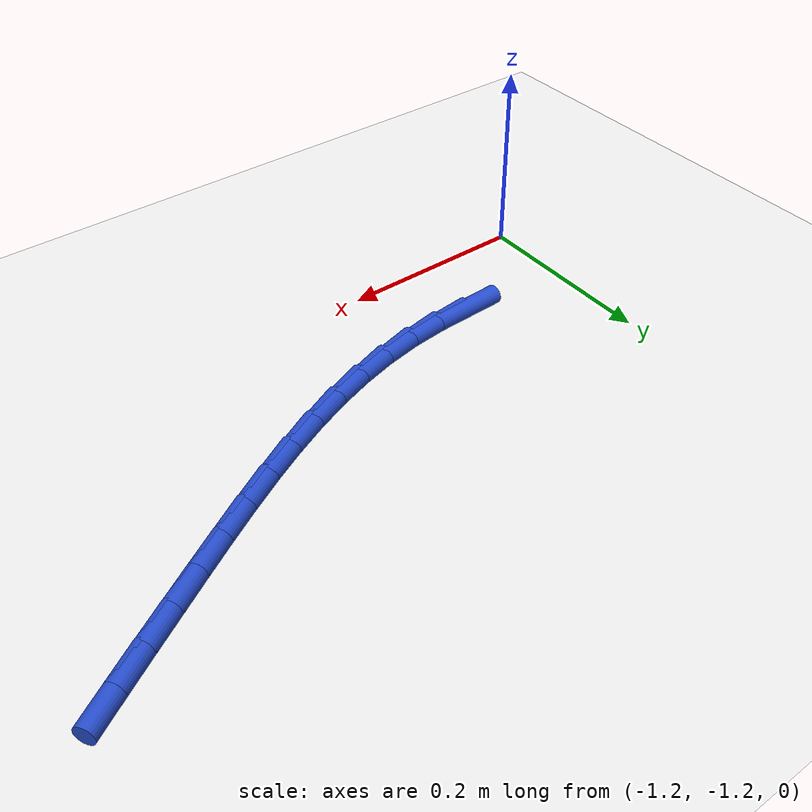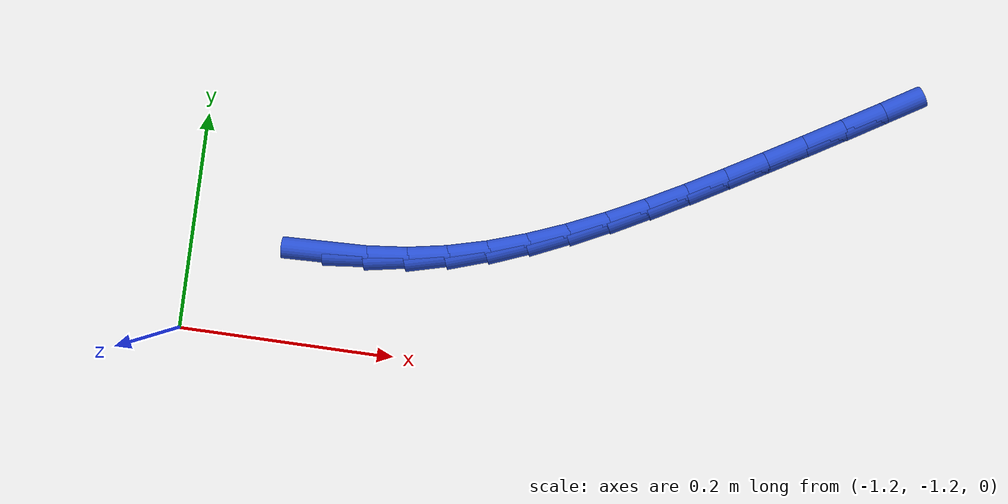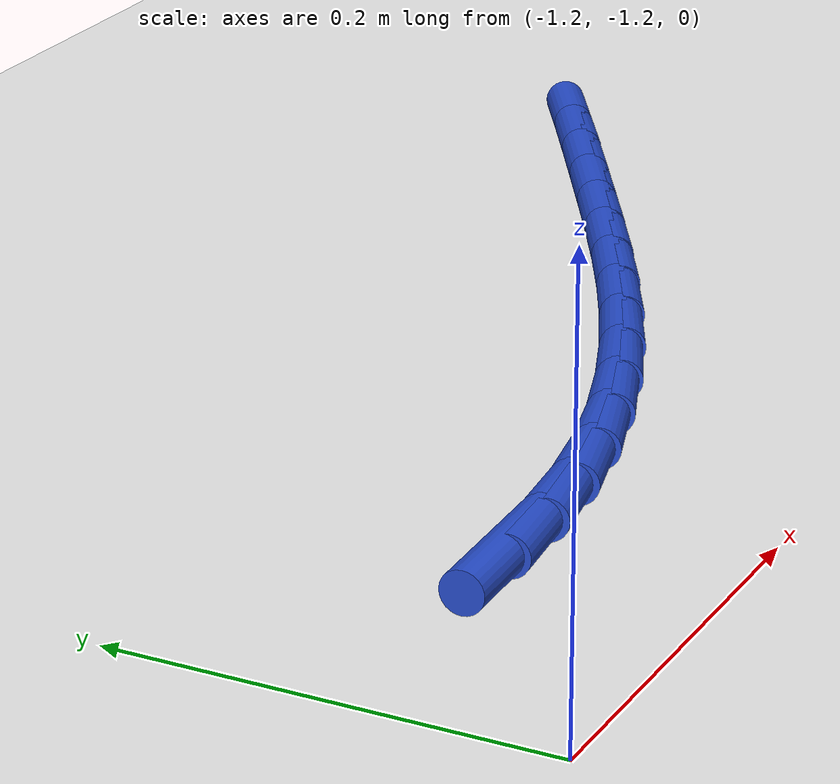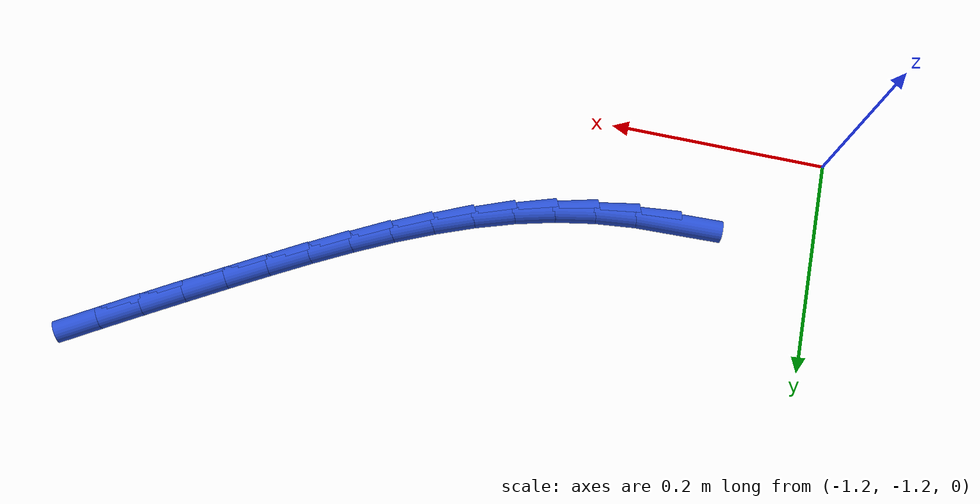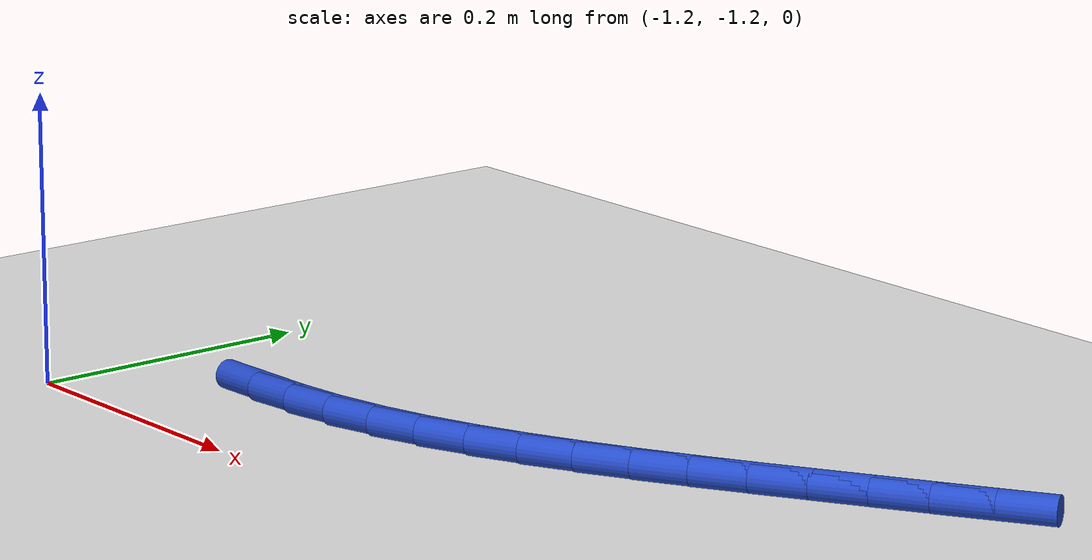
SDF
<sdf version="1.6">
 <world name="default">
  <model name="ground_plane">
   <static>1</static>
   <link name="link">
    <collision name="collision">
     <geometry><plane><normal>0 0 1</normal><size>100 100</size></plane></geometry>
     <surface><friction><ode><mu>100</mu><mu2>50</mu2></ode></friction></surface>
    </collision>
    <visual name="visual">
     <cast_shadows>0</cast_shadows>
     <geometry><plane><normal>0 0 1</normal><size>100 100</size></plane></geometry>
     <material>
      <script><uri>file://media/materials/scripts/gazebo.material</uri><name>Gazebo/WhiteGlow</name></script>
     </material>
    </visual>
   </link>
  </model>
  <model name="line">
   <link name="link_136">
    <pose>-1.0739378145190952 -1.1115067721940133 0.01 0 1.57 0.031399197259586904</pose>
    <collision name="collision">
     <geometry><cylinder><radius>0.01</radius><length>0.08</length></cylinder></geometry>
    </collision>
    <visual name="visual">
     <material>
      <script><name>Gazebo/Blue</name><uri>file://media/materials/scripts/gazebo.material</uri></script>
     </material>
     <geometry><cylinder><radius>0.01</radius><length>0.08</length></cylinder></geometry>
    </visual>
   </link>
   <link name="link_137">
    <pose>-1.0361590024038632 -1.110320157829714 0.01 0 1.57 0.10360883088432471</pose>
    <collision name="collision">
     <geometry><cylinder><radius>0.01</radius><length>0.08</length></cylinder></geometry>
    </collision>
    <visual name="visual">
     <material>
      <script><name>Gazebo/Blue</name><uri>file://media/materials/scripts/gazebo.material</uri></script>
     </material>
     <geometry><cylinder><radius>0.01</radius><length>0.08</length></cylinder></geometry>
    </visual>
   </link>
   <link name="link_138">
    <pose>-0.9988271810324548 -1.1064383513865088 0.01 0 1.57 0.18116275057583744</pose>
    <collision name="collision">
     <geometry><cylinder><radius>0.01</radius><length>0.08</length></cylinder></geometry>
    </collision>
    <visual name="visual">
     <material>
      <script><name>Gazebo/Blue</name><uri>file://media/materials/scripts/gazebo.material</uri></script>
     </material>
     <geometry><cylinder><radius>0.01</radius><length>0.08</length></cylinder></geometry>
    </visual>
   </link>
   <link name="link_139">
    <pose>-0.962082582621546 -1.099707805212259 0.01 0 1.57 0.25564000509784146</pose>
    <collision name="collision">
     <geometry><cylinder><radius>0.01</radius><length>0.08</length></cylinder></geometry>
    </collision>
    <visual name="visual">
     <material>
      <script><name>Gazebo/Blue</name><uri>file://media/materials/scripts/gazebo.material</uri></script>
     </material>
     <geometry><cylinder><radius>0.01</radius><length>0.08</length></cylinder></geometry>
    </visual>
   </link>
   <link name="link_140">
    <pose>-0.925940844676987 -1.0902618591294997 0.01 0 1.57 0.32127735436407745</pose>
    <collision name="collision">
     <geometry><cylinder><radius>0.01</radius><length>0.08</length></cylinder></geometry>
    </collision>
    <visual name="visual">
     <material>
      <script><name>Gazebo/Blue</name><uri>file://media/materials/scripts/gazebo.material</uri></script>
     </material>
     <geometry><cylinder><radius>0.01</radius><length>0.08</length></cylinder></geometry>
    </visual>
   </link>
   <link name="link_141">
    <pose>-0.8903395889704588 -1.0784134892937443 0.01 0 1.57 0.3776885656522135</pose>
    <collision name="collision">
     <geometry><cylinder><radius>0.01</radius><length>0.08</length></cylinder></geometry>
    </collision>
    <visual name="visual">
     <material>
      <script><name>Gazebo/Blue</name><uri>file://media/materials/scripts/gazebo.material</uri></script>
     </material>
     <geometry><cylinder><radius>0.01</radius><length>0.08</length></cylinder></geometry>
    </visual>
   </link>
   <link name="link_142">
    <pose>-0.8552152393745599 -1.0644784301015262 0.01 0 1.57 0.42491371141169265</pose>
    <collision name="collision">
     <geometry><cylinder><radius>0.01</radius><length>0.08</length></cylinder></geometry>
    </collision>
    <visual name="visual">
     <material>
      <script><name>Gazebo/Blue</name><uri>file://media/materials/scripts/gazebo.material</uri></script>
     </material>
     <geometry><cylinder><radius>0.01</radius><length>0.08</length></cylinder></geometry>
    </visual>
   </link>
   <link name="link_143">
    <pose>-0.8205042197618899 -1.048772415949381 0.01 0 1.57 0.4631958784255055</pose>
    <collision name="collision">
     <geometry><cylinder><radius>0.01</radius><length>0.08</length></cylinder></geometry>
    </collision>
    <visual name="visual">
     <material>
      <script><name>Gazebo/Blue</name><uri>file://media/materials/scripts/gazebo.material</uri></script>
     </material>
     <geometry><cylinder><radius>0.01</radius><length>0.08</length></cylinder></geometry>
    </visual>
   </link>
   <link name="link_144">
    <pose>-0.7861429540050475 -1.031611181233843 0.01 0 1.57 0.4928622850716602</pose>
    <collision name="collision">
     <geometry><cylinder><radius>0.01</radius><length>0.08</length></cylinder></geometry>
    </collision>
    <visual name="visual">
     <material>
      <script><name>Gazebo/Blue</name><uri>file://media/materials/scripts/gazebo.material</uri></script>
     </material>
     <geometry><cylinder><radius>0.01</radius><length>0.08</length></cylinder></geometry>
    </visual>
   </link>
   <link name="link_145">
    <pose>-0.7520678659766318 -1.013310460351447 0.01 0 1.57 0.5142376768360052</pose>
    <collision name="collision">
     <geometry><cylinder><radius>0.01</radius><length>0.08</length></cylinder></geometry>
    </collision>
    <visual name="visual">
     <material>
      <script><name>Gazebo/Blue</name><uri>file://media/materials/scripts/gazebo.material</uri></script>
     </material>
     <geometry><cylinder><radius>0.01</radius><length>0.08</length></cylinder></geometry>
    </visual>
   </link>
   <link name="link_146">
    <pose>-0.7182153795492414 -0.9941859876987275 0.01 0 1.57 0.5275864985528814</pose>
    <collision name="collision">
     <geometry><cylinder><radius>0.01</radius><length>0.08</length></cylinder></geometry>
    </collision>
    <visual name="visual">
     <material>
      <script><name>Gazebo/Blue</name><uri>file://media/materials/scripts/gazebo.material</uri></script>
     </material>
     <geometry><cylinder><radius>0.01</radius><length>0.08</length></cylinder></geometry>
    </visual>
   </link>
   <link name="link_147">
    <pose>-0.6845219185954754 -0.9745534976722193 0.01 0 1.57 0.5331541893473964</pose>
    <collision name="collision">
     <geometry><cylinder><radius>0.01</radius><length>0.08</length></cylinder></geometry>
    </collision>
    <visual name="visual">
     <material>
      <script><name>Gazebo/Blue</name><uri>file://media/materials/scripts/gazebo.material</uri></script>
     </material>
     <geometry><cylinder><radius>0.01</radius><length>0.08</length></cylinder></geometry>
    </visual>
   </link>
   <link name="link_148">
    <pose>-0.6509249479436966 -0.9547258459674013 0.01 0 1.57 0.5351307282831363</pose>
    <collision name="collision">
     <geometry><cylinder><radius>0.01</radius><length>0.08</length></cylinder></geometry>
    </collision>
    <visual name="visual">
     <material>
      <script><name>Gazebo/Blue</name><uri>file://media/materials/scripts/gazebo.material</uri></script>
     </material>
     <geometry><cylinder><radius>0.01</radius><length>0.08</length></cylinder></geometry>
    </visual>
   </link>
   <link name="link_149">
    <pose>-0.6174176763917726 -0.9348617316582059 0.01 0 1.57 0.5396637765908068</pose>
    <collision name="collision">
     <geometry><cylinder><radius>0.01</radius><length>0.08</length></cylinder></geometry>
    </collision>
    <visual name="visual">
     <material>
      <script><name>Gazebo/Blue</name><uri>file://media/materials/scripts/gazebo.material</uri></script>
     </material>
     <geometry><cylinder><radius>0.01</radius><length>0.08</length></cylinder></geometry>
    </visual>
   </link>
   <link name="link_150">
    <pose>-0.5840760620557947 -0.9148910155164698 0.01 0 1.57 0.5472795866583992</pose>
    <collision name="collision">
     <geometry><cylinder><radius>0.01</radius><length>0.08</length></cylinder></geometry>
    </collision>
    <visual name="visual">
     <material>
      <script><name>Gazebo/Blue</name><uri>file://media/materials/scripts/gazebo.material</uri></script>
     </material>
     <geometry><cylinder><radius>0.01</radius><length>0.08</length></cylinder></geometry>
    </visual>
   </link>
  </model>
 </world>
</sdf>
